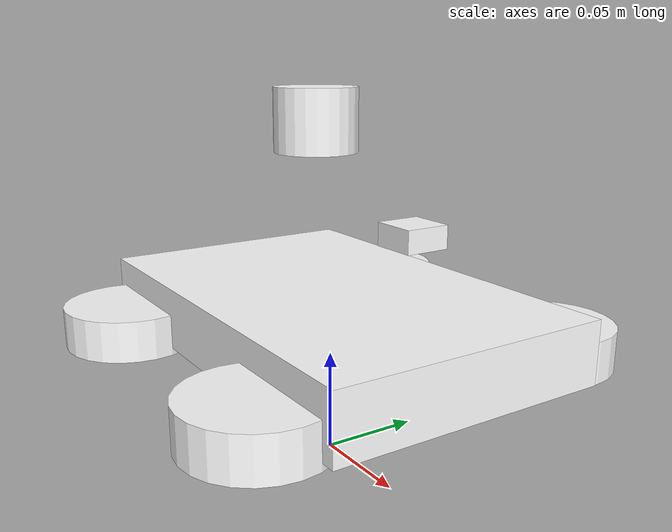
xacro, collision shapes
<?xml version="1.0" encoding="utf-8"?>
<robot name="rosmentor" xmlns:xacro="http://ros.org/wiki/xacro">
    <xacro:property name="machine"      value="$(env MACHINE_TYPE)"/>
    <xacro:include filename="$(find simulator)/urdf/mecanum.xacro"/>
    <xacro:include filename="$(find simulator)/urdf/inertial_matrix.xacro" />
</robot>

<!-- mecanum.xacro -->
<robot name="mecanum" xmlns:xacro="http://ros.org/wiki/xacro">
  <!-- EDIT: FIXED: Correct path to mesh files -->
  <xacro:property name="mesh_path" value="package://simulator/meshes"/>

  <material name="black">
    <color rgba="0 0 0 1"/>
  </material>

  <link name="imu_link"/>

  <joint name="imu_joint" type="fixed">
    <parent link="base_link"/>
    <child link="imu_link"/>
    <origin xyz="0 0 0" rpy="0 0 -1.57"/>
  </joint>

  <link name="base_footprint"/>

  <joint name="base_footprint_to_base_link" type="fixed">
    <parent link="base_footprint"/>
    <child link="base_link"/>
    <origin xyz="0 0 0.07" rpy="0 0 0"/>
  </joint>
  <link name="base_link">
    <inertial>
      <origin rpy="0 0 0" xyz="7.82634169708696E-05 3.66518389137982E-05 0.0068167426737893"/>
      <mass value="0.080358044299185"/>
      <inertia ixx="9.92047502462735E-05" ixy="3.20099144678921E-08" ixz="1.15869166655817E-05" iyy="0.000292461515602123" iyz="-2.92890751882614E-08" izz="0.000367604260834833"/>
    </inertial>
    <visual>
      <origin rpy="0 0 0" xyz="0 0 0"/>
      <geometry>
        <mesh filename="${mesh_path}/base_link.STL"/>
      </geometry>
      <material name="white">
        <color rgba="1 1 1 1"/>
      </material>
    </visual>
    <collision>
      <origin rpy="0 0 0" xyz="0 0 0"/>
      <geometry>
        <!-- Use simplified collision for better performance -->
        <box size="0.21 0.1347 0.03"/>
      </geometry>
    </collision>

    <!-- Visible collision box for debugging -->
    <visual>
      <origin xyz="0 0 0.015" rpy="0 0 0"/>
      <geometry><box size="0.21 0.1347 0.03"/></geometry>
      <material name="green"><color rgba="0.2 0.8 0.2 0.3"/></material>
    </visual>
  </link>

  <link name="wheel_lf_Link">
    <inertial>
      <origin rpy="0 0 0" xyz="6.23194347770945E-05 -0.00574614971695361 2.98597149463314E-05"/>
      <mass value="0.0378743634664218"/>
      <inertia ixx="3.67678518315829E-06" ixy="-1.42189561270372E-09" ixz="-1.20320324868622E-08" iyy="5.81008995754212E-06" iyz="1.72329758812212E-09" izz="3.67939460898329E-06"/>
    </inertial>
    <visual>
      <origin rpy="0 0 0" xyz="0 0 0"/>
      <geometry>
        <mesh filename="${mesh_path}/wheel_lf_Link.STL"/>
      </geometry>
      <material name="white">
        <color rgba="1 1 1 1"/>
      </material>
    </visual>
    <collision>
      <origin rpy="0 0 0" xyz="0 0 0"/>
      <geometry>
        <cylinder radius="0.0325" length="0.02"/>
      </geometry>
    </collision>
  </link>
  <joint name="wheel_lf_Joint" type="continuous">
    <origin rpy="0 0 0" xyz="0.067052 0.07591 -0.008408"/>  <!-- Raised by 1cm: -0.018408 + 0.01 -->
    <parent link="base_link"/>
    <child link="wheel_lf_Link"/>
    <axis xyz="0 1 0"/>
  </joint>

  <link name="wheel_rf_Link">
    <inertial>
      <origin rpy="0 0 0" xyz="6.22118237483121E-05 0.00574626671891662 2.98167804906255E-05"/>
      <mass value="0.0378687944527435"/>
      <inertia ixx="3.67635322071944E-06" ixy="1.49075106320551E-09" ixz="-1.20440562033349E-08" iyy="5.80905053329656E-06" iyz="-1.7316728972649E-09" izz="3.67859542953002E-06"/>
    </inertial>
    <visual>
      <origin rpy="0 0 0" xyz="0 0 0"/>
      <geometry>
        <mesh filename="${mesh_path}/wheel_rf_Link.STL"/>
      </geometry>
      <material name="white">
        <color rgba="1 1 1 1"/>
      </material>
    </visual>
    <collision>
      <origin rpy="0 0 0" xyz="0 0 0"/>
      <geometry>
        <cylinder radius="0.0325" length="0.02"/>
      </geometry>
    </collision>
  </link>
  <joint name="wheel_rf_Joint" type="continuous">
    <origin rpy="0 0 0" xyz="0.067052 -0.07591 -0.008408"/>  <!-- Raised by 1cm -->
    <parent link="base_link"/>
    <child link="wheel_rf_Link"/>
    <axis xyz="0 1 0"/>
  </joint>

  <link name="wheel_lb_Link">
    <inertial>
      <origin rpy="0 0 0" xyz="-4.39089176767909E-05 -0.00574629427498616 3.59684108433914E-05"/>
      <mass value="0.0378689402752074"/>
      <inertia ixx="3.67629328541386E-06" ixy="1.48552620491244E-09" ixz="1.20977149812926E-08" iyy="5.80903210056483E-06" iyz="1.72555302795062E-09" izz="3.6786318488588E-06"/>
    </inertial>
    <visual>
      <origin rpy="0 0 0" xyz="0 0 0"/>
      <geometry>
        <mesh filename="${mesh_path}/wheel_lb_Link.STL"/>
      </geometry>
      <material name="white">
        <color rgba="1 1 1 1"/>
      </material>
    </visual>
    <collision>
      <origin rpy="0 0 0" xyz="0 0 0"/>
      <geometry>
        <cylinder radius="0.0325" length="0.02"/>
      </geometry>
    </collision>
  </link>
  <joint name="wheel_lb_Joint" type="continuous">
    <origin rpy="0 0 0" xyz="-0.06764 0.07591 -0.008414"/>  <!-- Raised by 1cm -->
    <parent link="base_link"/>
    <child link="wheel_lb_Link"/>
    <axis xyz="0 1 0"/>
  </joint>

  <link name="wheel_rb_Link">
    <inertial>
      <origin rpy="0 0 0" xyz="-6.2256559793028E-05 0.00574614092169209 2.96857054536206E-05"/>
      <mass value="0.0378742388937267"/>
      <inertia ixx="3.67690880733038E-06" ixy="-1.42614754024296E-09" ixz="1.19925568848388E-08" iyy="5.81009054149328E-06" iyz="-1.72488948912739E-09" izz="3.67928241656151E-06"/>
    </inertial>
    <visual>
      <origin rpy="0 0 0" xyz="0 0 0"/>
      <geometry>
        <mesh filename="${mesh_path}/wheel_rb_Link.STL"/>
      </geometry>
      <material name="white">
        <color rgba="1 1 1 1"/>
      </material>
    </visual>
    <collision>
      <origin rpy="0 0 0" xyz="0 0 0"/>
      <geometry>
        <cylinder radius="0.0325" length="0.02"/>
      </geometry>
    </collision>
  </link>
  <joint name="wheel_rb_Joint" type="continuous">
    <origin rpy="0 0 0" xyz="-0.067621 -0.07591 -0.008408"/>  <!-- Raised by 1cm -->
    <parent link="base_link"/>
    <child link="wheel_rb_Link"/>
    <axis xyz="0 1 0"/>
  </joint>

  <link name="depth_cam">
    <inertial>
      <origin rpy="0 0 0" xyz="0.0023402290706885 0.00113784597175737 -0.010212706399263"/>
      <mass value="0.0270474748712619"/>
      <inertia ixx="1.43718505980935E-05" ixy="1.24779390700312E-07" ixz="1.29836475580818E-08" iyy="1.65912768335363E-06" iyz="2.28291474116005E-08" izz="1.45615925671284E-05"/>
    </inertial>
    <visual>
      <origin rpy="0 0 0" xyz="0 0 0"/>
      <geometry>
        <mesh filename="${mesh_path}/cam_Link.STL"/>
      </geometry>
      <material name="white">
        <color rgba="1 1 1 1"/>
      </material>
    </visual>
    <collision>
      <origin rpy="0 0 0" xyz="0 0 0"/>
      <geometry>
        <box size="0.02 0.02 0.01"/>
      </geometry>
    </collision>
  </link>

  <joint name="cam_Joint" type="fixed">
    <origin rpy="0 0 0" xyz="0.061376 -0.00013463 0.051154"/>
    <parent link="base_link"/>
    <child link="depth_cam"/>
    <axis xyz="0 0 0"/>
  </joint>

  <link name="lidar_frame">
    <inertial>
      <origin rpy="0 0 0" xyz="8.65086404290248E-05 9.02624664517182E-05 -0.0183546134707293"/>
      <mass value="0.0405423044439003"/>
      <inertia ixx="4.98470777040832E-06" ixy="-1.5407626531037E-07" ixz="2.05182756187779E-09" iyy="5.03926730954594E-06" iyz="1.10062857837226E-08" izz="8.25645669795306E-06"/>
    </inertial>
    <visual>
      <origin rpy="0 0 0" xyz="0 0 0"/>
      <geometry>
        <mesh filename="${mesh_path}/lidar_Link.STL"/>
      </geometry>
      <material name="white">
        <color rgba="1 1 1 1"/>
      </material>
    </visual>
    <collision>
      <origin rpy="0 0 0" xyz="0 0 0"/>
      <geometry>
        <cylinder radius="0.02" length="0.03"/>
      </geometry>
    </collision>
  </link>
  <joint name="lidar_Joint" type="fixed">
    <origin rpy="0 0 0" xyz="-0.012242 -8.533E-05 0.092501"/>
    <parent link="base_link"/>
    <child link="lidar_frame"/>
    <axis xyz="0 0 0"/>
  </joint>

  <!-- depth_cam sensor -->
  <gazebo reference="depth_cam">
    <sensor type="depth" name="depth_camera">
      <update_rate>15</update_rate>
      <camera>
        <horizontal_fov>1.047</horizontal_fov>
        <image>
          <width>640</width><height>480</height><format>R8G8B8</format>
        </image>
        <clip><near>0.05</near><far>8.0</far></clip>
      </camera>
      <plugin name="gazebo_ros_depth_camera" filename="libgazebo_ros_depth_camera.so">
        <ros>
          <remapping>depth/image_raw:=/camera/depth/image_raw</remapping>
          <remapping>camera_info:=/camera/depth/camera_info</remapping>
          <remapping>points:=/camera/depth/points</remapping>
        </ros>
        <output_points>true</output_points>
        <point_cloud_cutoff>0.05</point_cloud_cutoff>
        <frame_name>depth_cam</frame_name>
      </plugin>
    </sensor>
  </gazebo>

  <!-- Planar move plugin for omnidirectional movement -->
  <gazebo>
    <plugin name="gazebo_ros_planar_move" filename="libgazebo_ros_planar_move.so">
      <ros>
        <namespace>/</namespace>
        <remapping>cmd_vel:=controller/cmd_vel</remapping>
        <remapping>odom:=/odom</remapping>
      </ros>
      <update_rate>100</update_rate>
      <publish_odom>true</publish_odom>
      <publish_odom_tf>true</publish_odom_tf>
      <odometry_frame>odom</odometry_frame>
      <robot_base_frame>base_link</robot_base_frame>
      <command_timeout>0.5</command_timeout>
      <odometry_rate>20.0</odometry_rate>
      <covariance_x>0.0001</covariance_x>
      <covariance_y>0.0001</covariance_y>
      <covariance_yaw>0.01</covariance_yaw>
    </plugin>
  </gazebo>

  <!-- High friction for better control -->
  <gazebo reference="wheel_lf_Link">
    <mu1>1.5</mu1><mu2>1.5</mu2>
    <kp>1000000.0</kp><kd>100.0</kd>
    <minDepth>0.001</minDepth>
    <maxVel>0.1</maxVel>
  </gazebo>
  <gazebo reference="wheel_rf_Link">
    <mu1>1.5</mu1><mu2>1.5</mu2>
    <kp>1000000.0</kp><kd>100.0</kd>
    <minDepth>0.001</minDepth>
    <maxVel>0.1</maxVel>
  </gazebo>
  <gazebo reference="wheel_lb_Link">
    <mu1>1.5</mu1><mu2>1.5</mu2>
    <kp>1000000.0</kp><kd>100.0</kd>
    <minDepth>0.001</minDepth>
    <maxVel>0.1</maxVel>
  </gazebo>
  <gazebo reference="wheel_rb_Link">
    <mu1>1.5</mu1><mu2>1.5</mu2>
    <kp>1000000.0</kp><kd>100.0</kd>
    <minDepth>0.001</minDepth>
    <maxVel>0.1</maxVel>
  </gazebo>

</robot>
